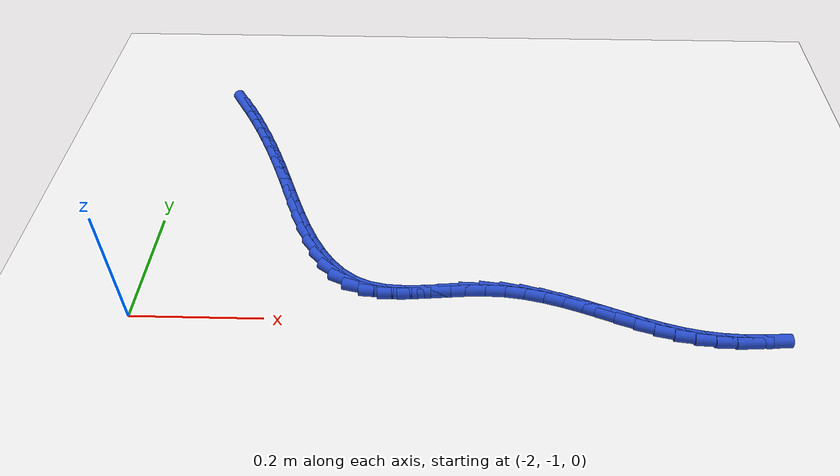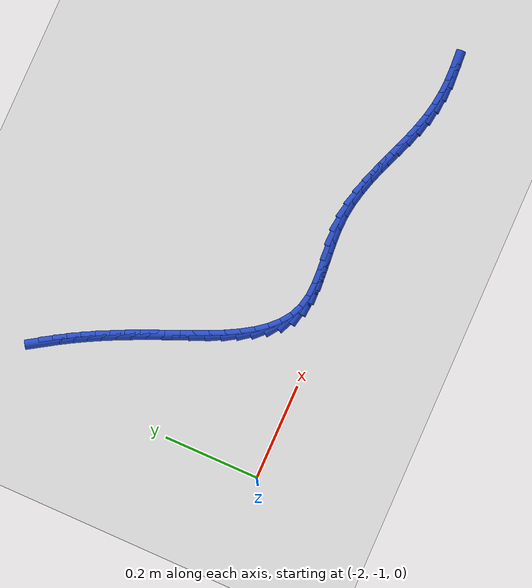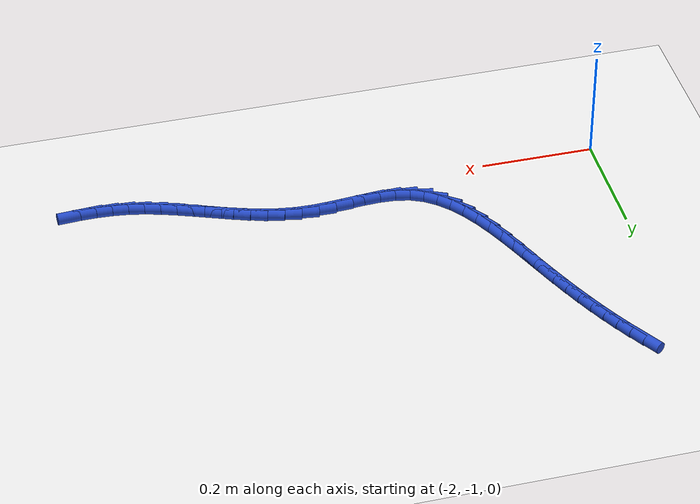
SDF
<sdf version="1.6">
 <world name="default">
  <model name="ground_plane">
   <static>1</static>
   <link name="link">
    <collision name="collision">
     <geometry><plane><normal>0 0 1</normal><size>100 100</size></plane></geometry>
     <surface><friction><ode><mu>100</mu><mu2>50</mu2></ode></friction></surface>
    </collision>
    <visual name="visual">
     <cast_shadows>0</cast_shadows>
     <geometry><plane><normal>0 0 1</normal><size>100 100</size></plane></geometry>
     <material>
      <script><uri>file://media/materials/scripts/gazebo.material</uri><name>Gazebo/WhiteGlow</name></script>
     </material>
    </visual>
   </link>
  </model>
  <model name="line">
   <link name="link_135">
    <pose>-1.923491866626553 -0.5000135155518068 0.01 0 1.57 -1.008261042093803</pose>
    <collision name="collision">
     <geometry><cylinder><radius>0.01</radius><length>0.08</length></cylinder></geometry>
    </collision>
    <visual name="visual">
     <material>
      <script><name>Gazebo/Blue</name><uri>file://media/materials/scripts/gazebo.material</uri></script>
     </material>
     <geometry><cylinder><radius>0.01</radius><length>0.08</length></cylinder></geometry>
    </visual>
   </link>
   <link name="link_136">
    <pose>-1.908355925110128 -0.5240202625746786 0.01 0 1.57 -1.0368419629974048</pose>
    <collision name="collision">
     <geometry><cylinder><radius>0.01</radius><length>0.08</length></cylinder></geometry>
    </collision>
    <visual name="visual">
     <material>
      <script><name>Gazebo/Blue</name><uri>file://media/materials/scripts/gazebo.material</uri></script>
     </material>
     <geometry><cylinder><radius>0.01</radius><length>0.08</length></cylinder></geometry>
    </visual>
   </link>
   <link name="link_137">
    <pose>-1.893970070330991 -0.5483518773533529 0.01 0 1.57 -1.0636110853884124</pose>
    <collision name="collision">
     <geometry><cylinder><radius>0.01</radius><length>0.08</length></cylinder></geometry>
    </collision>
    <visual name="visual">
     <material>
      <script><name>Gazebo/Blue</name><uri>file://media/materials/scripts/gazebo.material</uri></script>
     </material>
     <geometry><cylinder><radius>0.01</radius><length>0.08</length></cylinder></geometry>
    </visual>
   </link>
   <link name="link_138">
    <pose>-1.8802169632042574 -0.5731024130603949 0.01 0 1.57 -1.0881453965187684</pose>
    <collision name="collision">
     <geometry><cylinder><radius>0.01</radius><length>0.08</length></cylinder></geometry>
    </collision>
    <visual name="visual">
     <material>
      <script><name>Gazebo/Blue</name><uri>file://media/materials/scripts/gazebo.material</uri></script>
     </material>
     <geometry><cylinder><radius>0.01</radius><length>0.08</length></cylinder></geometry>
    </visual>
   </link>
   <link name="link_139">
    <pose>-1.8669792646450436 -0.5983659228683695 0.01 0 1.57 -1.1101105679967844</pose>
    <collision name="collision">
     <geometry><cylinder><radius>0.01</radius><length>0.08</length></cylinder></geometry>
    </collision>
    <visual name="visual">
     <material>
      <script><name>Gazebo/Blue</name><uri>file://media/materials/scripts/gazebo.material</uri></script>
     </material>
     <geometry><cylinder><radius>0.01</radius><length>0.08</length></cylinder></geometry>
    </visual>
   </link>
   <link name="link_140">
    <pose>-1.8541396355684652 -0.6242364599498419 0.01 0 1.57 -1.1292725497309861</pose>
    <collision name="collision">
     <geometry><cylinder><radius>0.01</radius><length>0.08</length></cylinder></geometry>
    </collision>
    <visual name="visual">
     <material>
      <script><name>Gazebo/Blue</name><uri>file://media/materials/scripts/gazebo.material</uri></script>
     </material>
     <geometry><cylinder><radius>0.01</radius><length>0.08</length></cylinder></geometry>
    </visual>
   </link>
   <link name="link_141">
    <pose>-1.8415807368896384 -0.6508080774773758 0.01 0 1.57 -1.1454998494109716</pose>
    <collision name="collision">
     <geometry><cylinder><radius>0.01</radius><length>0.08</length></cylinder></geometry>
    </collision>
    <visual name="visual">
     <material>
      <script><name>Gazebo/Blue</name><uri>file://media/materials/scripts/gazebo.material</uri></script>
     </material>
     <geometry><cylinder><radius>0.01</radius><length>0.08</length></cylinder></geometry>
    </visual>
   </link>
   <link name="link_142">
    <pose>-1.8291852295236797 -0.678174828623537 0.01 0 1.57 -1.1587577849653563</pose>
    <collision name="collision">
     <geometry><cylinder><radius>0.01</radius><length>0.08</length></cylinder></geometry>
    </collision>
    <visual name="visual">
     <material>
      <script><name>Gazebo/Blue</name><uri>file://media/materials/scripts/gazebo.material</uri></script>
     </material>
     <geometry><cylinder><radius>0.01</radius><length>0.08</length></cylinder></geometry>
    </visual>
   </link>
   <link name="link_143">
    <pose>-1.8168357743857049 -0.7064307665608898 0.01 0 1.57 -1.168599400606392</pose>
    <collision name="collision">
     <geometry><cylinder><radius>0.01</radius><length>0.08</length></cylinder></geometry>
    </collision>
    <visual name="visual">
     <material>
      <script><name>Gazebo/Blue</name><uri>file://media/materials/scripts/gazebo.material</uri></script>
     </material>
     <geometry><cylinder><radius>0.01</radius><length>0.08</length></cylinder></geometry>
    </visual>
   </link>
   <link name="link_144">
    <pose>-1.8044102327652105 -0.7356408558736053 0.01 0 1.57 -1.1682950480404657</pose>
    <collision name="collision">
     <geometry><cylinder><radius>0.01</radius><length>0.08</length></cylinder></geometry>
    </collision>
    <visual name="visual">
     <material>
      <script><name>Gazebo/Blue</name><uri>file://media/materials/scripts/gazebo.material</uri></script>
     </material>
     <geometry><cylinder><radius>0.01</radius><length>0.08</length></cylinder></geometry>
    </visual>
   </link>
   <link name="link_145">
    <pose>-1.791717711772281 -0.7654533698902941 0.01 0 1.57 -1.1531663755605854</pose>
    <collision name="collision">
     <geometry><cylinder><radius>0.01</radius><length>0.08</length></cylinder></geometry>
    </collision>
    <visual name="visual">
     <material>
      <script><name>Gazebo/Blue</name><uri>file://media/materials/scripts/gazebo.material</uri></script>
     </material>
     <geometry><cylinder><radius>0.01</radius><length>0.08</length></cylinder></geometry>
    </visual>
   </link>
   <link name="link_146">
    <pose>-1.7785159152301406 -0.7952050474216096 0.01 0 1.57 -1.1225773779617818</pose>
    <collision name="collision">
     <geometry><cylinder><radius>0.01</radius><length>0.08</length></cylinder></geometry>
    </collision>
    <visual name="visual">
     <material>
      <script><name>Gazebo/Blue</name><uri>file://media/materials/scripts/gazebo.material</uri></script>
     </material>
     <geometry><cylinder><radius>0.01</radius><length>0.08</length></cylinder></geometry>
    </visual>
   </link>
   <link name="link_147">
    <pose>-1.764561309789536 -0.8242251292765158 0.01 0 1.57 -1.0746158847259895</pose>
    <collision name="collision">
     <geometry><cylinder><radius>0.01</radius><length>0.08</length></cylinder></geometry>
    </collision>
    <visual name="visual">
     <material>
      <script><name>Gazebo/Blue</name><uri>file://media/materials/scripts/gazebo.material</uri></script>
     </material>
     <geometry><cylinder><radius>0.01</radius><length>0.08</length></cylinder></geometry>
    </visual>
   </link>
   <link name="link_148">
    <pose>-1.7496103621012125 -0.8518428562639767 0.01 0 1.57 -1.0058758479114926</pose>
    <collision name="collision">
     <geometry><cylinder><radius>0.01</radius><length>0.08</length></cylinder></geometry>
    </collision>
    <visual name="visual">
     <material>
      <script><name>Gazebo/Blue</name><uri>file://media/materials/scripts/gazebo.material</uri></script>
     </material>
     <geometry><cylinder><radius>0.01</radius><length>0.08</length></cylinder></geometry>
    </visual>
   </link>
   <link name="link_149">
    <pose>-1.7334195388159168 -0.8773874691929543 0.01 0 1.57 -0.9113860076840112</pose>
    <collision name="collision">
     <geometry><cylinder><radius>0.01</radius><length>0.08</length></cylinder></geometry>
    </collision>
    <visual name="visual">
     <material>
      <script><name>Gazebo/Blue</name><uri>file://media/materials/scripts/gazebo.material</uri></script>
     </material>
     <geometry><cylinder><radius>0.01</radius><length>0.08</length></cylinder></geometry>
    </visual>
   </link>
   <link name="link_150">
    <pose>-1.7157453065843942 -0.9001882088724129 0.01 0 1.57 -0.785009703916534</pose>
    <collision name="collision">
     <geometry><cylinder><radius>0.01</radius><length>0.08</length></cylinder></geometry>
    </collision>
    <visual name="visual">
     <material>
      <script><name>Gazebo/Blue</name><uri>file://media/materials/scripts/gazebo.material</uri></script>
     </material>
     <geometry><cylinder><radius>0.01</radius><length>0.08</length></cylinder></geometry>
    </visual>
   </link>
   <link name="link_151">
    <pose>-1.6963441320573922 -0.9195743161113161 0.01 0 1.57 -0.6213408291795265</pose>
    <collision name="collision">
     <geometry><cylinder><radius>0.01</radius><length>0.08</length></cylinder></geometry>
    </collision>
    <visual name="visual">
     <material>
      <script><name>Gazebo/Blue</name><uri>file://media/materials/scripts/gazebo.material</uri></script>
     </material>
     <geometry><cylinder><radius>0.01</radius><length>0.08</length></cylinder></geometry>
    </visual>
   </link>
   <link name="link_152">
    <pose>-1.6749724818856562 -0.9348750317186276 0.01 0 1.57 -0.4204305283772891</pose>
    <collision name="collision">
     <geometry><cylinder><radius>0.01</radius><length>0.08</length></cylinder></geometry>
    </collision>
    <visual name="visual">
     <material>
      <script><name>Gazebo/Blue</name><uri>file://media/materials/scripts/gazebo.material</uri></script>
     </material>
     <geometry><cylinder><radius>0.01</radius><length>0.08</length></cylinder></geometry>
    </visual>
   </link>
   <link name="link_153">
    <pose>-1.6513869261288725 -0.9454198750345582 0.01 0 1.57 -0.21104553694492706</pose>
    <collision name="collision">
     <geometry><cylinder><radius>0.01</radius><length>0.08</length></cylinder></geometry>
    </collision>
    <visual name="visual">
     <material>
      <script><name>Gazebo/Blue</name><uri>file://media/materials/scripts/gazebo.material</uri></script>
     </material>
     <geometry><cylinder><radius>0.01</radius><length>0.08</length></cylinder></geometry>
    </visual>
   </link>
   <link name="link_154">
    <pose>-1.6255025184464786 -0.9509652398493442 0.01 0 1.57 -0.057146507243596226</pose>
    <collision name="collision">
     <geometry><cylinder><radius>0.01</radius><length>0.08</length></cylinder></geometry>
    </collision>
    <visual name="visual">
     <material>
      <script><name>Gazebo/Blue</name><uri>file://media/materials/scripts/gazebo.material</uri></script>
     </material>
     <geometry><cylinder><radius>0.01</radius><length>0.08</length></cylinder></geometry>
    </visual>
   </link>
   <link name="link_155">
    <pose>-1.5977123395957886 -0.9525550825453508 0.01 0 1.57 0.03695042478225842</pose>
    <collision name="collision">
     <geometry><cylinder><radius>0.01</radius><length>0.08</length></cylinder></geometry>
    </collision>
    <visual name="visual">
     <material>
      <script><name>Gazebo/Blue</name><uri>file://media/materials/scripts/gazebo.material</uri></script>
     </material>
     <geometry><cylinder><radius>0.01</radius><length>0.08</length></cylinder></geometry>
    </visual>
   </link>
   <link name="link_156">
    <pose>-1.568499240418463 -0.9514751545893874 0.01 0 1.57 0.08153321845343305</pose>
    <collision name="collision">
     <geometry><cylinder><radius>0.01</radius><length>0.08</length></cylinder></geometry>
    </collision>
    <visual name="visual">
     <material>
      <script><name>Gazebo/Blue</name><uri>file://media/materials/scripts/gazebo.material</uri></script>
     </material>
     <geometry><cylinder><radius>0.01</radius><length>0.08</length></cylinder></geometry>
    </visual>
   </link>
   <link name="link_157">
    <pose>-1.5383460717561623 -0.9490112074482636 0.01 0 1.57 0.08350942826341035</pose>
    <collision name="collision">
     <geometry><cylinder><radius>0.01</radius><length>0.08</length></cylinder></geometry>
    </collision>
    <visual name="visual">
     <material>
      <script><name>Gazebo/Blue</name><uri>file://media/materials/scripts/gazebo.material</uri></script>
     </material>
     <geometry><cylinder><radius>0.01</radius><length>0.08</length></cylinder></geometry>
    </visual>
   </link>
   <link name="link_158">
    <pose>-1.5077356844505498 -0.9464489925887888 0.01 0 1.57 0.044918012798955805</pose>
    <collision name="collision">
     <geometry><cylinder><radius>0.01</radius><length>0.08</length></cylinder></geometry>
    </collision>
    <visual name="visual">
     <material>
      <script><name>Gazebo/Blue</name><uri>file://media/materials/scripts/gazebo.material</uri></script>
     </material>
     <geometry><cylinder><radius>0.01</radius><length>0.08</length></cylinder></geometry>
    </visual>
   </link>
   <link name="link_159">
    <pose>-1.4771509293432852 -0.9450742614777724 0.01 0 1.57 -0.03560989420292642</pose>
    <collision name="collision">
     <geometry><cylinder><radius>0.01</radius><length>0.08</length></cylinder></geometry>
    </collision>
    <visual name="visual">
     <material>
      <script><name>Gazebo/Blue</name><uri>file://media/materials/scripts/gazebo.material</uri></script>
     </material>
     <geometry><cylinder><radius>0.01</radius><length>0.08</length></cylinder></geometry>
    </visual>
   </link>
   <link name="link_160">
    <pose>-1.4470660464796798 -0.9461460340375568 0.01 0 1.57 -0.13415539341265312</pose>
    <collision name="collision">
     <geometry><cylinder><radius>0.01</radius><length>0.08</length></cylinder></geometry>
    </collision>
    <visual name="visual">
     <material>
      <script><name>Gazebo/Blue</name><uri>file://media/materials/scripts/gazebo.material</uri></script>
     </material>
     <geometry><cylinder><radius>0.01</radius><length>0.08</length></cylinder></geometry>
    </visual>
   </link>
   <link name="link_161">
    <pose>-1.417693396123868 -0.9501103448717653 0.01 0 1.57 -0.2177581273408032</pose>
    <collision name="collision">
     <geometry><cylinder><radius>0.01</radius><length>0.08</length></cylinder></geometry>
    </collision>
    <visual name="visual">
     <material>
      <script><name>Gazebo/Blue</name><uri>file://media/materials/scripts/gazebo.material</uri></script>
     </material>
     <geometry><cylinder><radius>0.01</radius><length>0.08</length></cylinder></geometry>
    </visual>
   </link>
   <link name="link_162">
    <pose>-1.3889421597477427 -0.9564720337123428 0.01 0 1.57 -0.2829911583386315</pose>
    <collision name="collision">
     <geometry><cylinder><radius>0.01</radius><length>0.08</length></cylinder></geometry>
    </collision>
    <visual name="visual">
     <material>
      <script><name>Gazebo/Blue</name><uri>file://media/materials/scripts/gazebo.material</uri></script>
     </material>
     <geometry><cylinder><radius>0.01</radius><length>0.08</length></cylinder></geometry>
    </visual>
   </link>
   <link name="link_163">
    <pose>-1.3607045926611006 -0.964683394343522 0.01 0 1.57 -0.32936624879441234</pose>
    <collision name="collision">
     <geometry><cylinder><radius>0.01</radius><length>0.08</length></cylinder></geometry>
    </collision>
    <visual name="visual">
     <material>
      <script><name>Gazebo/Blue</name><uri>file://media/materials/scripts/gazebo.material</uri></script>
     </material>
     <geometry><cylinder><radius>0.01</radius><length>0.08</length></cylinder></geometry>
    </visual>
   </link>
   <link name="link_164">
    <pose>-1.332872950173736 -0.9741967205495352 0.01 0 1.57 -0.35693969937330505</pose>
    <collision name="collision">
     <geometry><cylinder><radius>0.01</radius><length>0.08</length></cylinder></geometry>
    </collision>
    <visual name="visual">
     <material>
      <script><name>Gazebo/Blue</name><uri>file://media/materials/scripts/gazebo.material</uri></script>
     </material>
     <geometry><cylinder><radius>0.01</radius><length>0.08</length></cylinder></geometry>
    </visual>
   </link>
   <link name="link_165">
    <pose>-1.3053394875954445 -0.9844643061146157 0.01 0 1.57 -0.36582196371109515</pose>
    <collision name="collision">
     <geometry><cylinder><radius>0.01</radius><length>0.08</length></cylinder></geometry>
    </collision>
    <visual name="visual">
     <material>
      <script><name>Gazebo/Blue</name><uri>file://media/materials/scripts/gazebo.material</uri></script>
     </material>
     <geometry><cylinder><radius>0.01</radius><length>0.08</length></cylinder></geometry>
    </visual>
   </link>
   <link name="link_166">
    <pose>-1.2779964602360192 -0.9949384448229959 0.01 0 1.57 -0.35588464866898756</pose>
    <collision name="collision">
     <geometry><cylinder><radius>0.01</radius><length>0.08</length></cylinder></geometry>
    </collision>
    <visual name="visual">
     <material>
      <script><name>Gazebo/Blue</name><uri>file://media/materials/scripts/gazebo.material</uri></script>
     </material>
     <geometry><cylinder><radius>0.01</radius><length>0.08</length></cylinder></geometry>
    </visual>
   </link>
   <link name="link_167">
    <pose>-1.2507361234052574 -1.0050714304589077 0.01 0 1.57 -0.32665706367409497</pose>
    <collision name="collision">
     <geometry><cylinder><radius>0.01</radius><length>0.08</length></cylinder></geometry>
    </collision>
    <visual name="visual">
     <material>
      <script><name>Gazebo/Blue</name><uri>file://media/materials/scripts/gazebo.material</uri></script>
     </material>
     <geometry><cylinder><radius>0.01</radius><length>0.08</length></cylinder></geometry>
    </visual>
   </link>
   <link name="link_168">
    <pose>-1.2234507324129535 -1.0143155568065843 0.01 0 1.57 -0.27741572545763615</pose>
    <collision name="collision">
     <geometry><cylinder><radius>0.01</radius><length>0.08</length></cylinder></geometry>
    </collision>
    <visual name="visual">
     <material>
      <script><name>Gazebo/Blue</name><uri>file://media/materials/scripts/gazebo.material</uri></script>
     </material>
     <geometry><cylinder><radius>0.01</radius><length>0.08</length></cylinder></geometry>
    </visual>
   </link>
   <link name="link_169">
    <pose>-1.1960325425689018 -1.022123117650258 0.01 0 1.57 -0.20758862659529065</pose>
    <collision name="collision">
     <geometry><cylinder><radius>0.01</radius><length>0.08</length></cylinder></geometry>
    </collision>
    <visual name="visual">
     <material>
      <script><name>Gazebo/Blue</name><uri>file://media/materials/scripts/gazebo.material</uri></script>
     </material>
     <geometry><cylinder><radius>0.01</radius><length>0.08</length></cylinder></geometry>
    </visual>
   </link>
   <link name="link_170">
    <pose>-1.1683741684637845 -1.0279486022107394 0.01 0 1.57 -0.12653348940910042</pose>
    <collision name="collision">
     <geometry><cylinder><radius>0.01</radius><length>0.08</length></cylinder></geometry>
    </collision>
    <visual name="visual">
     <material>
      <script><name>Gazebo/Blue</name><uri>file://media/materials/scripts/gazebo.material</uri></script>
     </material>
     <geometry><cylinder><radius>0.01</radius><length>0.08</length></cylinder></geometry>
    </visual>
   </link>
   <link name="link_171">
    <pose>-1.1404106794389182 -1.031505925455225 0.01 0 1.57 -0.05317183463194379</pose>
    <collision name="collision">
     <geometry><cylinder><radius>0.01</radius><length>0.08</length></cylinder></geometry>
    </collision>
    <visual name="visual">
     <material>
      <script><name>Gazebo/Blue</name><uri>file://media/materials/scripts/gazebo.material</uri></script>
     </material>
     <geometry><cylinder><radius>0.01</radius><length>0.08</length></cylinder></geometry>
    </visual>
   </link>
   <link name="link_172">
    <pose>-1.1121590562127202 -1.0330095333828118 0.01 0 1.57 0.009770981505354982</pose>
    <collision name="collision">
     <geometry><cylinder><radius>0.01</radius><length>0.08</length></cylinder></geometry>
    </collision>
    <visual name="visual">
     <material>
      <script><name>Gazebo/Blue</name><uri>file://media/materials/scripts/gazebo.material</uri></script>
     </material>
     <geometry><cylinder><radius>0.01</radius><length>0.08</length></cylinder></geometry>
    </visual>
   </link>
   <link name="link_173">
    <pose>-1.083645615384927 -1.03273092021318 0.01 0 1.57 0.062160022182149464</pose>
    <collision name="collision">
     <geometry><cylinder><radius>0.01</radius><length>0.08</length></cylinder></geometry>
    </collision>
    <visual name="visual">
     <material>
      <script><name>Gazebo/Blue</name><uri>file://media/materials/scripts/gazebo.material</uri></script>
     </material>
     <geometry><cylinder><radius>0.01</radius><length>0.08</length></cylinder></geometry>
    </visual>
   </link>
  </model>
 </world>
</sdf>
